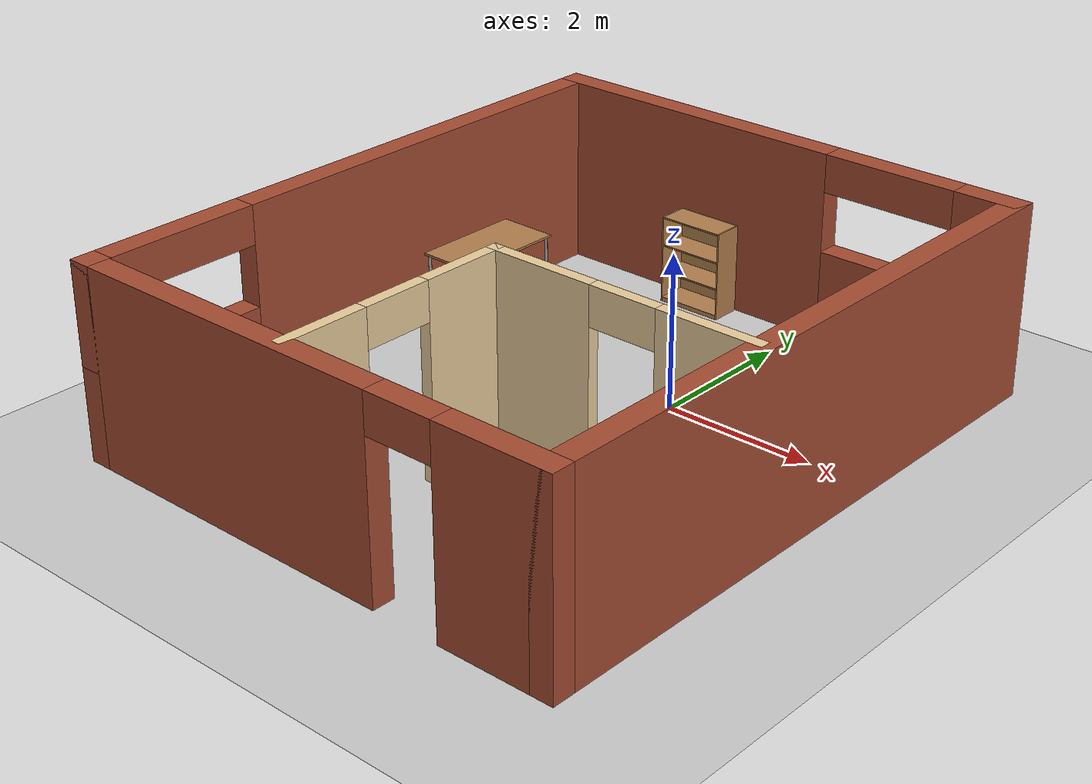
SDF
<sdf version="1.6">
 <world name="default">
  <plugin name="welcome_message" filename="libwelcome_message.so"/>
  <light name="sun" type="directional">
   <pose>0 0 10 0 -0 0</pose>
   <diffuse>0.8 0.8 0.8 1</diffuse>
   <specular>0.2 0.2 0.2 1</specular>
   <attenuation>
    <range>1000</range>
    <constant>0.9</constant>
    <linear>0.01</linear>
    <quadratic>0.001</quadratic>
   </attenuation>
   <direction>-0.5 0.1 -0.9</direction>
  </light>
  <model name="ground_plane">
   <static>1</static>
   <link name="link">
    <collision name="collision">
     <geometry><plane><normal>0 0 1</normal><size>100 100</size></plane></geometry>
     <surface><friction><ode><mu>100</mu><mu2>50</mu2></ode></friction></surface>
    </collision>
    <visual name="visual">
     <cast_shadows>0</cast_shadows>
     <geometry><plane><normal>0 0 1</normal><size>100 100</size></plane></geometry>
     <material>
      <script><uri>file://media/materials/scripts/gazebo.material</uri><name>Gazebo/Grey</name></script>
     </material>
    </visual>
   </link>
  </model>
  <gravity>0 0 -9.8</gravity>
  <magnetic_field>6e-06 2.3e-05 -4.2e-05</magnetic_field>
  <atmosphere type="adiabatic"/>
  <physics name="default_physics" default="0" type="ode">
   <max_step_size>0.001</max_step_size>
   <real_time_factor>1</real_time_factor>
   <real_time_update_rate>1000</real_time_update_rate>
  </physics>
  <scene><ambient>0.4 0.4 0.4 1</ambient><background>0.7 0.7 0.7 1</background><shadows>1</shadows></scene>
  <spherical_coordinates>
   <surface_model>EARTH_WGS84</surface_model>
   <latitude_deg>0</latitude_deg>
   <longitude_deg>0</longitude_deg>
   <elevation>0</elevation>
   <heading_deg>0</heading_deg>
  </spherical_coordinates>
  <model name="table_0">
   <static>1</static>
   <link name="link">
    <collision name="surface">
     <pose>0 0 1 0 -0 0</pose>
     <geometry><box><size>1.5 0.8 0.03</size></box></geometry>
     <surface><friction><ode><mu>0.6</mu><mu2>0.6</mu2></ode></friction></surface>
    </collision>
    <visual name="visual1">
     <pose>0 0 1 0 -0 0</pose>
     <geometry><box><size>1.5 0.8 0.03</size></box></geometry>
     <material>
      <script><uri>file://media/materials/scripts/gazebo.material</uri><name>Gazebo/Wood</name></script>
     </material>
    </visual>
    <collision name="front_left_leg">
     <pose>0.68 0.38 0.5 0 -0 0</pose>
     <geometry><cylinder><radius>0.02</radius><length>1</length></cylinder></geometry>
    </collision>
    <visual name="front_left_leg">
     <pose>0.68 0.38 0.5 0 -0 0</pose>
     <geometry><cylinder><radius>0.02</radius><length>1</length></cylinder></geometry>
     <material>
      <script><uri>file://media/materials/scripts/gazebo.material</uri><name>Gazebo/Grey</name></script>
     </material>
    </visual>
    <collision name="front_right_leg">
     <pose>0.68 -0.38 0.5 0 -0 0</pose>
     <geometry><cylinder><radius>0.02</radius><length>1</length></cylinder></geometry>
    </collision>
    <visual name="front_right_leg">
     <pose>0.68 -0.38 0.5 0 -0 0</pose>
     <geometry><cylinder><radius>0.02</radius><length>1</length></cylinder></geometry>
     <material>
      <script><uri>file://media/materials/scripts/gazebo.material</uri><name>Gazebo/Grey</name></script>
     </material>
    </visual>
    <collision name="back_right_leg">
     <pose>-0.68 -0.38 0.5 0 -0 0</pose>
     <geometry><cylinder><radius>0.02</radius><length>1</length></cylinder></geometry>
    </collision>
    <visual name="back_right_leg">
     <pose>-0.68 -0.38 0.5 0 -0 0</pose>
     <geometry><cylinder><radius>0.02</radius><length>1</length></cylinder></geometry>
     <material>
      <script><uri>file://media/materials/scripts/gazebo.material</uri><name>Gazebo/Grey</name></script>
     </material>
    </visual>
    <collision name="back_left_leg">
     <pose>-0.68 0.38 0.5 0 -0 0</pose>
     <geometry><cylinder><radius>0.02</radius><length>1</length></cylinder></geometry>
    </collision>
    <visual name="back_left_leg">
     <pose>-0.68 0.38 0.5 0 -0 0</pose>
     <geometry><cylinder><radius>0.02</radius><length>1</length></cylinder></geometry>
     <material>
      <script><uri>file://media/materials/scripts/gazebo.material</uri><name>Gazebo/Grey</name></script>
     </material>
    </visual>
   </link>
   <pose>-3.37762 0.440889 0 0 0 -1.57822</pose>
  </model>
  <model name="cabinet">
   <static>1</static>
   <link name="cabinet_bottom_plate">
    <inertial>
     <pose>0 0 -1 0 -0 0</pose>
     <inertia><ixx>2.05</ixx><ixy>0</ixy><ixz>0</ixz><iyy>2.05</iyy><iyz>0</iyz><izz>2.05</izz></inertia>
     <mass>25</mass>
    </inertial>
    <collision name="cabinet_bottom_plate_geom">
     <pose>0 0 0.01 0 -0 0</pose>
     <geometry><box><size>0.45 0.45 0.02</size></box></geometry>
    </collision>
    <visual name="cabinet_bottom_plate_geom_visual">
     <pose>0 0 0.01 0 -0 0</pose>
     <geometry><box><size>0.45 0.45 0.02</size></box></geometry>
     <material>
      <script><uri>file://media/materials/scripts/gazebo.material</uri><name>Gazebo/Wood</name></script>
     </material>
    </visual>
    <collision name="cabinet_bottom_plate_geom_cabinet_back_plate">
     <pose>0.235 0 0.51 0 -0 0</pose>
     <geometry><box><size>0.02 0.45 1.02</size></box></geometry>
    </collision>
    <visual name="cabinet_bottom_plate_geom_cabinet_back_plate_visual">
     <pose>0.235 0 0.51 0 -0 0</pose>
     <geometry><box><size>0.02 0.45 1.02</size></box></geometry>
     <material>
      <script><uri>file://media/materials/scripts/gazebo.material</uri><name>Gazebo/Wood</name></script>
     </material>
    </visual>
    <collision name="cabinet_bottom_plate_geom_cabinet_left_plate">
     <pose>0 0.235 0.51 0 -0 0</pose>
     <geometry><box><size>0.45 0.02 1.02</size></box></geometry>
    </collision>
    <visual name="cabinet_bottom_plate_geom_cabinet_left_plate_visual">
     <pose>0 0.235 0.51 0 -0 0</pose>
     <geometry><box><size>0.45 0.02 1.02</size></box></geometry>
     <material>
      <script><uri>file://media/materials/scripts/gazebo.material</uri><name>Gazebo/Wood</name></script>
     </material>
    </visual>
    <collision name="cabinet_bottom_plate_geom_cabinet_middle_plate">
     <pose>0 0 0.51 0 -0 0</pose>
     <geometry><box><size>0.45 0.45 0.02</size></box></geometry>
    </collision>
    <visual name="cabinet_bottom_plate_geom_cabinet_middle_plate_visual">
     <pose>0 0 0.51 0 -0 0</pose>
     <geometry><box><size>0.45 0.45 0.02</size></box></geometry>
     <material>
      <script><uri>file://media/materials/scripts/gazebo.material</uri><name>Gazebo/Wood</name></script>
     </material>
    </visual>
    <collision name="cabinet_bottom_plate_geom_cabinet_right_plate">
     <pose>0 -0.235 0.51 0 -0 0</pose>
     <geometry><box><size>0.45 0.02 1.02</size></box></geometry>
    </collision>
    <visual name="cabinet_bottom_plate_geom_cabinet_right_plate_visual">
     <pose>0 -0.235 0.51 0 -0 0</pose>
     <geometry><box><size>0.45 0.02 1.02</size></box></geometry>
     <material>
      <script><uri>file://media/materials/scripts/gazebo.material</uri><name>Gazebo/Wood</name></script>
     </material>
    </visual>
    <collision name="cabinet_bottom_plate_geom_cabinet_top_plate">
     <pose>0 0 1.01 0 -0 0</pose>
     <geometry><box><size>0.45 0.45 0.02</size></box></geometry>
    </collision>
    <visual name="cabinet_bottom_plate_geom_cabinet_top_plate_visual">
     <pose>0 0 1.01 0 -0 0</pose>
     <geometry><box><size>0.45 0.45 0.02</size></box></geometry>
     <material>
      <script><uri>file://media/materials/scripts/gazebo.material</uri><name>Gazebo/Wood</name></script>
     </material>
    </visual>
   </link>
   <pose>2.34182 0.948326 0 0 -0 0</pose>
  </model>
  <model name="bookshelf">
   <static>1</static>
   <link name="link">
    <inertial><mass>1</mass></inertial>
    <collision name="back">
     <pose>0 0.005 0.6 0 -0 0</pose>
     <geometry><box><size>0.9 0.01 1.2</size></box></geometry>
    </collision>
    <visual name="visual1">
     <pose>0 0.005 0.6 0 -0 0</pose>
     <geometry><box><size>0.9 0.01 1.2</size></box></geometry>
     <material>
      <script><uri>file://media/materials/scripts/gazebo.material</uri><name>Gazebo/Wood</name></script>
     </material>
    </visual>
    <collision name="left_side">
     <pose>0.45 -0.195 0.6 0 -0 0</pose>
     <geometry><box><size>0.02 0.4 1.2</size></box></geometry>
    </collision>
    <visual name="visual2">
     <pose>0.45 -0.195 0.6 0 -0 0</pose>
     <geometry><box><size>0.02 0.4 1.2</size></box></geometry>
     <material>
      <script><uri>file://media/materials/scripts/gazebo.material</uri><name>Gazebo/Wood</name></script>
     </material>
    </visual>
    <collision name="right_side">
     <pose>-0.45 -0.195 0.6 0 -0 0</pose>
     <geometry><box><size>0.02 0.4 1.2</size></box></geometry>
    </collision>
    <visual name="visual3">
     <pose>-0.45 -0.195 0.6 0 -0 0</pose>
     <geometry><box><size>0.02 0.4 1.2</size></box></geometry>
     <material>
      <script><uri>file://media/materials/scripts/gazebo.material</uri><name>Gazebo/Wood</name></script>
     </material>
    </visual>
    <collision name="bottom">
     <pose>0 -0.195 0.03 0 -0 0</pose>
     <geometry><box><size>0.88 0.4 0.06</size></box></geometry>
    </collision>
    <visual name="visual4">
     <pose>0 -0.195 0.03 0 -0 0</pose>
     <geometry><box><size>0.88 0.4 0.06</size></box></geometry>
     <material>
      <script><uri>file://media/materials/scripts/gazebo.material</uri><name>Gazebo/Wood</name></script>
     </material>
    </visual>
    <collision name="top">
     <pose>0 -0.195 1.19 0 -0 0</pose>
     <geometry><box><size>0.88 0.4 0.02</size></box></geometry>
    </collision>
    <visual name="visual5">
     <pose>0 -0.195 1.19 0 -0 0</pose>
     <geometry><box><size>0.88 0.4 0.02</size></box></geometry>
     <material>
      <script><uri>file://media/materials/scripts/gazebo.material</uri><name>Gazebo/Wood</name></script>
     </material>
    </visual>
    <collision name="low_shelf">
     <pose>0 -0.195 0.43 0 -0 0</pose>
     <geometry><box><size>0.88 0.4 0.02</size></box></geometry>
    </collision>
    <visual name="visual6">
     <pose>0 -0.195 0.43 0 -0 0</pose>
     <geometry><box><size>0.88 0.4 0.02</size></box></geometry>
     <material>
      <script><uri>file://media/materials/scripts/gazebo.material</uri><name>Gazebo/Wood</name></script>
     </material>
    </visual>
    <collision name="high_shelf">
     <pose>0 -0.195 0.8 0 -0 0</pose>
     <geometry><box><size>0.88 0.4 0.02</size></box></geometry>
    </collision>
    <visual name="visual7">
     <pose>0 -0.195 0.8 0 -0 0</pose>
     <geometry><box><size>0.88 0.4 0.02</size></box></geometry>
     <material>
      <script><uri>file://media/materials/scripts/gazebo.material</uri><name>Gazebo/Wood</name></script>
     </material>
    </visual>
   </link>
   <pose>-1.53018 2.67141 0 0 -0 0</pose>
  </model>
  <model name="house">
   <link name="Wall_0">
    <pose>0 4.0085 0 0 -0 0</pose>
    <visual name="Wall_0_Visual_0">
     <pose>-1.33829 0 1.25 0 -0 0</pose>
     <geometry><box><size>4.32341 0.3 2.5</size></box></geometry>
     <material>
      <script><uri>file://media/materials/scripts/gazebo.material</uri><name>Gazebo/Bricks</name></script>
      <ambient>1 0.764706 0.305882 1</ambient>
      <shader type="pixel"/>
      <diffuse>1 1 1 1</diffuse>
      <specular>0.2 0.2 0.2 1</specular>
      <emissive>0 0 0 1</emissive>
     </material>
     <meta><layer>0</layer></meta>
    </visual>
    <visual name="Wall_0_Visual_1">
     <pose>2.16171 0 0.6 0 -0 0</pose>
     <geometry><box><size>2.67659 0.3 1.2</size></box></geometry>
     <material>
      <script><uri>file://media/materials/scripts/gazebo.material</uri><name>Gazebo/Bricks</name></script>
      <ambient>1 0.764706 0.305882 1</ambient>
      <shader type="pixel"/>
      <diffuse>1 1 1 1</diffuse>
      <specular>0.2 0.2 0.2 1</specular>
      <emissive>0 0 0 1</emissive>
     </material>
     <meta><layer>0</layer></meta>
    </visual>
    <visual name="Wall_0_Visual_2">
     <pose>3.06171 0 1.85 0 -0 0</pose>
     <geometry><box><size>0.876586 0.3 1.3</size></box></geometry>
     <material>
      <script><uri>file://media/materials/scripts/gazebo.material</uri><name>Gazebo/Bricks</name></script>
      <ambient>1 0.764706 0.305882 1</ambient>
      <shader type="pixel"/>
      <diffuse>1 1 1 1</diffuse>
      <specular>0.2 0.2 0.2 1</specular>
      <emissive>0 0 0 1</emissive>
     </material>
     <meta><layer>0</layer></meta>
    </visual>
    <visual name="Wall_0_Visual_3">
     <pose>1.72341 0 2.25 0 -0 0</pose>
     <geometry><box><size>1.8 0.3 0.5</size></box></geometry>
     <material>
      <script><uri>file://media/materials/scripts/gazebo.material</uri><name>Gazebo/Bricks</name></script>
      <ambient>1 0.764706 0.305882 1</ambient>
      <shader type="pixel"/>
      <diffuse>1 1 1 1</diffuse>
      <specular>0.2 0.2 0.2 1</specular>
      <emissive>0 0 0 1</emissive>
     </material>
     <meta><layer>0</layer></meta>
    </visual>
    <collision name="Wall_0_Collision_0">
     <pose>-1.33829 0 1.25 0 -0 0</pose>
     <geometry><box><size>4.32341 0.3 2.5</size></box></geometry>
     <surface>
      <friction>
       <ode><mu>1</mu><mu2>1</mu2><fdir1>0 0 0</fdir1><slip1>0</slip1><slip2>0</slip2></ode>
       <torsional>
        <coefficient>1</coefficient>
        <patch_radius>0</patch_radius>
        <surface_radius>0</surface_radius>
        <use_patch_radius>1</use_patch_radius>
        <ode><slip>0</slip></ode>
       </torsional>
      </friction>
      <bounce><restitution_coefficient>0</restitution_coefficient><threshold>1e+06</threshold></bounce>
      <contact>
       <collide_without_contact>0</collide_without_contact>
       <collide_without_contact_bitmask>1</collide_without_contact_bitmask>
       <collide_bitmask>1</collide_bitmask>
       <ode>
        <soft_cfm>0</soft_cfm>
        <soft_erp>0.2</soft_erp>
        <kp>1e+13</kp>
        <kd>1</kd>
        <max_vel>0.01</max_vel>
        <min_depth>0</min_depth>
       </ode>
       <bullet>
        <split_impulse>1</split_impulse>
        <split_impulse_penetration_threshold>-0.01</split_impulse_penetration_threshold>
        <soft_cfm>0</soft_cfm>
        <soft_erp>0.2</soft_erp>
        <kp>1e+13</kp>
        <kd>1</kd>
       </bullet>
      </contact>
     </surface>
    </collision>
    <collision name="Wall_0_Collision_1">
     <pose>2.16171 0 0.6 0 -0 0</pose>
     <geometry><box><size>2.67659 0.3 1.2</size></box></geometry>
     <surface>
      <friction>
       <ode><mu>1</mu><mu2>1</mu2><fdir1>0 0 0</fdir1><slip1>0</slip1><slip2>0</slip2></ode>
       <torsional>
        <coefficient>1</coefficient>
        <patch_radius>0</patch_radius>
        <surface_radius>0</surface_radius>
        <use_patch_radius>1</use_patch_radius>
        <ode><slip>0</slip></ode>
       </torsional>
      </friction>
      <bounce><restitution_coefficient>0</restitution_coefficient><threshold>1e+06</threshold></bounce>
      <contact>
       <collide_without_contact>0</collide_without_contact>
       <collide_without_contact_bitmask>1</collide_without_contact_bitmask>
       <collide_bitmask>1</collide_bitmask>
       <ode>
        <soft_cfm>0</soft_cfm>
        <soft_erp>0.2</soft_erp>
        <kp>1e+13</kp>
        <kd>1</kd>
        <max_vel>0.01</max_vel>
        <min_depth>0</min_depth>
       </ode>
       <bullet>
        <split_impulse>1</split_impulse>
        <split_impulse_penetration_threshold>-0.01</split_impulse_penetration_threshold>
        <soft_cfm>0</soft_cfm>
        <soft_erp>0.2</soft_erp>
        <kp>1e+13</kp>
        <kd>1</kd>
       </bullet>
      </contact>
     </surface>
    </collision>
    <collision name="Wall_0_Collision_2">
     <pose>3.06171 0 1.85 0 -0 0</pose>
     <geometry><box><size>0.876586 0.3 1.3</size></box></geometry>
     <surface>
      <friction>
       <ode><mu>1</mu><mu2>1</mu2><fdir1>0 0 0</fdir1><slip1>0</slip1><slip2>0</slip2></ode>
       <torsional>
        <coefficient>1</coefficient>
        <patch_radius>0</patch_radius>
        <surface_radius>0</surface_radius>
        <use_patch_radius>1</use_patch_radius>
        <ode><slip>0</slip></ode>
       </torsional>
      </friction>
      <bounce><restitution_coefficient>0</restitution_coefficient><threshold>1e+06</threshold></bounce>
      <contact>
       <collide_without_contact>0</collide_without_contact>
       <collide_without_contact_bitmask>1</collide_without_contact_bitmask>
       <collide_bitmask>1</collide_bitmask>
       <ode>
        <soft_cfm>0</soft_cfm>
        <soft_erp>0.2</soft_erp>
        <kp>1e+13</kp>
        <kd>1</kd>
        <max_vel>0.01</max_vel>
        <min_depth>0</min_depth>
       </ode>
       <bullet>
        <split_impulse>1</split_impulse>
        <split_impulse_penetration_threshold>-0.01</split_impulse_penetration_threshold>
        <soft_cfm>0</soft_cfm>
        <soft_erp>0.2</soft_erp>
        <kp>1e+13</kp>
        <kd>1</kd>
       </bullet>
      </contact>
     </surface>
    </collision>
    <collision name="Wall_0_Collision_3">
     <pose>1.72341 0 2.25 0 -0 0</pose>
     <geometry><box><size>1.8 0.3 0.5</size></box></geometry>
     <surface>
      <friction>
       <ode><mu>1</mu><mu2>1</mu2><fdir1>0 0 0</fdir1><slip1>0</slip1><slip2>0</slip2></ode>
       <torsional>
        <coefficient>1</coefficient>
        <patch_radius>0</patch_radius>
        <surface_radius>0</surface_radius>
        <use_patch_radius>1</use_patch_radius>
        <ode><slip>0</slip></ode>
       </torsional>
      </friction>
      <bounce><restitution_coefficient>0</restitution_coefficient><threshold>1e+06</threshold></bounce>
      <contact>
       <collide_without_contact>0</collide_without_contact>
       <collide_without_contact_bitmask>1</collide_without_contact_bitmask>
       <collide_bitmask>1</collide_bitmask>
       <ode>
        <soft_cfm>0</soft_cfm>
        <soft_erp>0.2</soft_erp>
        <kp>1e+13</kp>
        <kd>1</kd>
        <max_vel>0.01</max_vel>
        <min_depth>0</min_depth>
       </ode>
       <bullet>
        <split_impulse>1</split_impulse>
        <split_impulse_penetration_threshold>-0.01</split_impulse_penetration_threshold>
        <soft_cfm>0</soft_cfm>
        <soft_erp>0.2</soft_erp>
        <kp>1e+13</kp>
        <kd>1</kd>
       </bullet>
      </contact>
     </surface>
    </collision>
   </link>
   <link name="Wall_11">
    <pose>3.35 0 0 0 0 -1.5708</pose>
    <visual name="Wall_11_Visual">
     <pose>0 0 1.25 0 -0 0</pose>
     <geometry><box><size>8.317 0.3 2.5</size></box></geometry>
     <material>
      <script><uri>file://media/materials/scripts/gazebo.material</uri><name>Gazebo/Bricks</name></script>
      <ambient>1 0.764706 0.305882 1</ambient>
      <shader type="pixel"/>
      <diffuse>1 1 1 1</diffuse>
      <specular>0.2 0.2 0.2 1</specular>
      <emissive>0 0 0 1</emissive>
     </material>
     <meta><layer>0</layer></meta>
    </visual>
    <collision name="Wall_11_Collision">
     <pose>0 0 1.25 0 -0 0</pose>
     <geometry><box><size>8.317 0.3 2.5</size></box></geometry>
     <surface>
      <friction>
       <ode><mu>1</mu><mu2>1</mu2><fdir1>0 0 0</fdir1><slip1>0</slip1><slip2>0</slip2></ode>
       <torsional>
        <coefficient>1</coefficient>
        <patch_radius>0</patch_radius>
        <surface_radius>0</surface_radius>
        <use_patch_radius>1</use_patch_radius>
        <ode><slip>0</slip></ode>
       </torsional>
      </friction>
      <bounce><restitution_coefficient>0</restitution_coefficient><threshold>1e+06</threshold></bounce>
      <contact>
       <collide_without_contact>0</collide_without_contact>
       <collide_without_contact_bitmask>1</collide_without_contact_bitmask>
       <collide_bitmask>1</collide_bitmask>
       <ode>
        <soft_cfm>0</soft_cfm>
        <soft_erp>0.2</soft_erp>
        <kp>1e+13</kp>
        <kd>1</kd>
        <max_vel>0.01</max_vel>
        <min_depth>0</min_depth>
       </ode>
       <bullet>
        <split_impulse>1</split_impulse>
        <split_impulse_penetration_threshold>-0.01</split_impulse_penetration_threshold>
        <soft_cfm>0</soft_cfm>
        <soft_erp>0.2</soft_erp>
        <kp>1e+13</kp>
        <kd>1</kd>
       </bullet>
      </contact>
     </surface>
    </collision>
   </link>
   <link name="Wall_13">
    <pose>-0.288 -2.4125 0 0 -0 1.5708</pose>
    <visual name="Wall_13_Visual_0">
     <pose>-1.04294 0 1.25 0 -0 0</pose>
     <geometry><box><size>1.16413 0.15 2.5</size></box></geometry>
     <material>
      <script><uri>file://media/materials/scripts/gazebo.material</uri><name>Gazebo/Grey</name></script>
      <ambient>0.921569 0.807843 0.615686 1</ambient>
      <shader type="pixel"/>
      <diffuse>0.7 0.7 0.7 1</diffuse>
      <specular>0.01 0.01 0.01 1</specular>
      <emissive>0 0 0 1</emissive>
     </material>
     <meta><layer>0</layer></meta>
    </visual>
    <visual name="Wall_13_Visual_1">
     <pose>1.03206 0 1.25 0 -0 0</pose>
     <geometry><box><size>1.18587 0.15 2.5</size></box></geometry>
     <material>
      <script><uri>file://media/materials/scripts/gazebo.material</uri><name>Gazebo/Grey</name></script>
      <ambient>0.921569 0.807843 0.615686 1</ambient>
      <shader type="pixel"/>
      <diffuse>0.7 0.7 0.7 1</diffuse>
      <specular>0.01 0.01 0.01 1</specular>
      <emissive>0 0 0 1</emissive>
     </material>
     <meta><layer>0</layer></meta>
    </visual>
    <visual name="Wall_13_Visual_2">
     <pose>-0.010874 0 2.25 0 -0 0</pose>
     <geometry><box><size>0.9 0.15 0.5</size></box></geometry>
     <material>
      <script><uri>file://media/materials/scripts/gazebo.material</uri><name>Gazebo/Grey</name></script>
      <ambient>0.921569 0.807843 0.615686 1</ambient>
      <shader type="pixel"/>
      <diffuse>0.7 0.7 0.7 1</diffuse>
      <specular>0.01 0.01 0.01 1</specular>
      <emissive>0 0 0 1</emissive>
     </material>
     <meta><layer>0</layer></meta>
    </visual>
    <collision name="Wall_13_Collision_0">
     <pose>-1.04294 0 1.25 0 -0 0</pose>
     <geometry><box><size>1.16413 0.15 2.5</size></box></geometry>
     <surface>
      <friction>
       <ode><mu>1</mu><mu2>1</mu2><fdir1>0 0 0</fdir1><slip1>0</slip1><slip2>0</slip2></ode>
       <torsional>
        <coefficient>1</coefficient>
        <patch_radius>0</patch_radius>
        <surface_radius>0</surface_radius>
        <use_patch_radius>1</use_patch_radius>
        <ode><slip>0</slip></ode>
       </torsional>
      </friction>
      <bounce><restitution_coefficient>0</restitution_coefficient><threshold>1e+06</threshold></bounce>
      <contact>
       <collide_without_contact>0</collide_without_contact>
       <collide_without_contact_bitmask>1</collide_without_contact_bitmask>
       <collide_bitmask>1</collide_bitmask>
       <ode>
        <soft_cfm>0</soft_cfm>
        <soft_erp>0.2</soft_erp>
        <kp>1e+13</kp>
        <kd>1</kd>
        <max_vel>0.01</max_vel>
        <min_depth>0</min_depth>
       </ode>
       <bullet>
        <split_impulse>1</split_impulse>
        <split_impulse_penetration_threshold>-0.01</split_impulse_penetration_threshold>
        <soft_cfm>0</soft_cfm>
        <soft_erp>0.2</soft_erp>
        <kp>1e+13</kp>
        <kd>1</kd>
       </bullet>
      </contact>
     </surface>
    </collision>
    <collision name="Wall_13_Collision_1">
     <pose>1.03206 0 1.25 0 -0 0</pose>
     <geometry><box><size>1.18587 0.15 2.5</size></box></geometry>
     <surface>
      <friction>
       <ode><mu>1</mu><mu2>1</mu2><fdir1>0 0 0</fdir1><slip1>0</slip1><slip2>0</slip2></ode>
       <torsional>
        <coefficient>1</coefficient>
        <patch_radius>0</patch_radius>
        <surface_radius>0</surface_radius>
        <use_patch_radius>1</use_patch_radius>
        <ode><slip>0</slip></ode>
       </torsional>
      </friction>
      <bounce><restitution_coefficient>0</restitution_coefficient><threshold>1e+06</threshold></bounce>
      <contact>
       <collide_without_contact>0</collide_without_contact>
       <collide_without_contact_bitmask>1</collide_without_contact_bitmask>
       <collide_bitmask>1</collide_bitmask>
       <ode>
        <soft_cfm>0</soft_cfm>
        <soft_erp>0.2</soft_erp>
        <kp>1e+13</kp>
        <kd>1</kd>
        <max_vel>0.01</max_vel>
        <min_depth>0</min_depth>
       </ode>
       <bullet>
        <split_impulse>1</split_impulse>
        <split_impulse_penetration_threshold>-0.01</split_impulse_penetration_threshold>
        <soft_cfm>0</soft_cfm>
        <soft_erp>0.2</soft_erp>
        <kp>1e+13</kp>
        <kd>1</kd>
       </bullet>
      </contact>
     </surface>
    </collision>
    <collision name="Wall_13_Collision_2">
     <pose>-0.010874 0 2.25 0 -0 0</pose>
     <geometry><box><size>0.9 0.15 0.5</size></box></geometry>
     <surface>
      <friction>
       <ode><mu>1</mu><mu2>1</mu2><fdir1>0 0 0</fdir1><slip1>0</slip1><slip2>0</slip2></ode>
       <torsional>
        <coefficient>1</coefficient>
        <patch_radius>0</patch_radius>
        <surface_radius>0</surface_radius>
        <use_patch_radius>1</use_patch_radius>
        <ode><slip>0</slip></ode>
       </torsional>
      </friction>
      <bounce><restitution_coefficient>0</restitution_coefficient><threshold>1e+06</threshold></bounce>
      <contact>
       <collide_without_contact>0</collide_without_contact>
       <collide_without_contact_bitmask>1</collide_without_contact_bitmask>
       <collide_bitmask>1</collide_bitmask>
       <ode>
        <soft_cfm>0</soft_cfm>
        <soft_erp>0.2</soft_erp>
        <kp>1e+13</kp>
        <kd>1</kd>
        <max_vel>0.01</max_vel>
        <min_depth>0</min_depth>
       </ode>
       <bullet>
        <split_impulse>1</split_impulse>
        <split_impulse_penetration_threshold>-0.01</split_impulse_penetration_threshold>
        <soft_cfm>0</soft_cfm>
        <soft_erp>0.2</soft_erp>
        <kp>1e+13</kp>
        <kd>1</kd>
       </bullet>
      </contact>
     </surface>
    </collision>
   </link>
   <link name="Wall_14">
    <pose>1.512 -0.8625 0 0 -0 0</pose>
    <visual name="Wall_14_Visual_0">
     <pose>-1.12678 0 1.25 0 -0 0</pose>
     <geometry><box><size>1.49644 0.15 2.5</size></box></geometry>
     <material>
      <script><uri>file://media/materials/scripts/gazebo.material</uri><name>Gazebo/Grey</name></script>
      <ambient>0.921569 0.807843 0.615686 1</ambient>
      <shader type="pixel"/>
      <diffuse>0.7 0.7 0.7 1</diffuse>
      <specular>0.01 0.01 0.01 1</specular>
      <emissive>0 0 0 1</emissive>
     </material>
     <meta><layer>0</layer></meta>
    </visual>
    <visual name="Wall_14_Visual_1">
     <pose>1.19822 0 1.25 0 -0 0</pose>
     <geometry><box><size>1.35356 0.15 2.5</size></box></geometry>
     <material>
      <script><uri>file://media/materials/scripts/gazebo.material</uri><name>Gazebo/Grey</name></script>
      <ambient>0.921569 0.807843 0.615686 1</ambient>
      <shader type="pixel"/>
      <diffuse>0.7 0.7 0.7 1</diffuse>
      <specular>0.01 0.01 0.01 1</specular>
      <emissive>0 0 0 1</emissive>
     </material>
     <meta><layer>0</layer></meta>
    </visual>
    <visual name="Wall_14_Visual_2">
     <pose>0.071437 0 2.25 0 -0 0</pose>
     <geometry><box><size>0.9 0.15 0.5</size></box></geometry>
     <material>
      <script><uri>file://media/materials/scripts/gazebo.material</uri><name>Gazebo/Grey</name></script>
      <ambient>0.921569 0.807843 0.615686 1</ambient>
      <shader type="pixel"/>
      <diffuse>0.7 0.7 0.7 1</diffuse>
      <specular>0.01 0.01 0.01 1</specular>
      <emissive>0 0 0 1</emissive>
     </material>
     <meta><layer>0</layer></meta>
    </visual>
    <collision name="Wall_14_Collision_0">
     <pose>-1.12678 0 1.25 0 -0 0</pose>
     <geometry><box><size>1.49644 0.15 2.5</size></box></geometry>
     <surface>
      <friction>
       <ode><mu>1</mu><mu2>1</mu2><fdir1>0 0 0</fdir1><slip1>0</slip1><slip2>0</slip2></ode>
       <torsional>
        <coefficient>1</coefficient>
        <patch_radius>0</patch_radius>
        <surface_radius>0</surface_radius>
        <use_patch_radius>1</use_patch_radius>
        <ode><slip>0</slip></ode>
       </torsional>
      </friction>
      <bounce><restitution_coefficient>0</restitution_coefficient><threshold>1e+06</threshold></bounce>
      <contact>
       <collide_without_contact>0</collide_without_contact>
       <collide_without_contact_bitmask>1</collide_without_contact_bitmask>
       <collide_bitmask>1</collide_bitmask>
       <ode>
        <soft_cfm>0</soft_cfm>
        <soft_erp>0.2</soft_erp>
        <kp>1e+13</kp>
        <kd>1</kd>
        <max_vel>0.01</max_vel>
        <min_depth>0</min_depth>
       </ode>
       <bullet>
        <split_impulse>1</split_impulse>
        <split_impulse_penetration_threshold>-0.01</split_impulse_penetration_threshold>
        <soft_cfm>0</soft_cfm>
        <soft_erp>0.2</soft_erp>
        <kp>1e+13</kp>
        <kd>1</kd>
       </bullet>
      </contact>
     </surface>
    </collision>
    <collision name="Wall_14_Collision_1">
     <pose>1.19822 0 1.25 0 -0 0</pose>
     <geometry><box><size>1.35356 0.15 2.5</size></box></geometry>
     <surface>
      <friction>
       <ode><mu>1</mu><mu2>1</mu2><fdir1>0 0 0</fdir1><slip1>0</slip1><slip2>0</slip2></ode>
       <torsional>
        <coefficient>1</coefficient>
        <patch_radius>0</patch_radius>
        <surface_radius>0</surface_radius>
        <use_patch_radius>1</use_patch_radius>
        <ode><slip>0</slip></ode>
       </torsional>
      </friction>
      <bounce><restitution_coefficient>0</restitution_coefficient><threshold>1e+06</threshold></bounce>
      <contact>
       <collide_without_contact>0</collide_without_contact>
       <collide_without_contact_bitmask>1</collide_without_contact_bitmask>
       <collide_bitmask>1</collide_bitmask>
       <ode>
        <soft_cfm>0</soft_cfm>
        <soft_erp>0.2</soft_erp>
        <kp>1e+13</kp>
        <kd>1</kd>
        <max_vel>0.01</max_vel>
        <min_depth>0</min_depth>
       </ode>
       <bullet>
        <split_impulse>1</split_impulse>
        <split_impulse_penetration_threshold>-0.01</split_impulse_penetration_threshold>
        <soft_cfm>0</soft_cfm>
        <soft_erp>0.2</soft_erp>
        <kp>1e+13</kp>
        <kd>1</kd>
       </bullet>
      </contact>
     </surface>
    </collision>
    <collision name="Wall_14_Collision_2">
     <pose>0.071437 0 2.25 0 -0 0</pose>
     <geometry><box><size>0.9 0.15 0.5</size></box></geometry>
     <surface>
      <friction>
       <ode><mu>1</mu><mu2>1</mu2><fdir1>0 0 0</fdir1><slip1>0</slip1><slip2>0</slip2></ode>
       <torsional>
        <coefficient>1</coefficient>
        <patch_radius>0</patch_radius>
        <surface_radius>0</surface_radius>
        <use_patch_radius>1</use_patch_radius>
        <ode><slip>0</slip></ode>
       </torsional>
      </friction>
      <bounce><restitution_coefficient>0</restitution_coefficient><threshold>1e+06</threshold></bounce>
      <contact>
       <collide_without_contact>0</collide_without_contact>
       <collide_without_contact_bitmask>1</collide_without_contact_bitmask>
       <collide_bitmask>1</collide_bitmask>
       <ode>
        <soft_cfm>0</soft_cfm>
        <soft_erp>0.2</soft_erp>
        <kp>1e+13</kp>
        <kd>1</kd>
        <max_vel>0.01</max_vel>
        <min_depth>0</min_depth>
       </ode>
       <bullet>
        <split_impulse>1</split_impulse>
        <split_impulse_penetration_threshold>-0.01</split_impulse_penetration_threshold>
        <soft_cfm>0</soft_cfm>
        <soft_erp>0.2</soft_erp>
        <kp>1e+13</kp>
        <kd>1</kd>
       </bullet>
      </contact>
     </surface>
    </collision>
   </link>
   <link name="Wall_4">
    <pose>-3.35 0 0 0 0 -1.5708</pose>
    <visual name="Wall_4_Visual_0">
     <pose>-1.15907 0 1.25 0 -0 0</pose>
     <geometry><box><size>5.99886 0.3 2.5</size></box></geometry>
     <material>
      <script><uri>file://media/materials/scripts/gazebo.material</uri><name>Gazebo/Bricks</name></script>
      <ambient>1 0.764706 0.305882 1</ambient>
      <shader type="pixel"/>
      <diffuse>1 1 1 1</diffuse>
      <specular>0.2 0.2 0.2 1</specular>
      <emissive>0 0 0 1</emissive>
     </material>
     <meta><layer>0</layer></meta>
    </visual>
    <visual name="Wall_4_Visual_1">
     <pose>2.99943 0 0.6 0 -0 0</pose>
     <geometry><box><size>2.31814 0.3 1.2</size></box></geometry>
     <material>
      <script><uri>file://media/materials/scripts/gazebo.material</uri><name>Gazebo/Bricks</name></script>
      <ambient>1 0.764706 0.305882 1</ambient>
      <shader type="pixel"/>
      <diffuse>1 1 1 1</diffuse>
      <specular>0.2 0.2 0.2 1</specular>
      <emissive>0 0 0 1</emissive>
     </material>
     <meta><layer>0</layer></meta>
    </visual>
    <visual name="Wall_4_Visual_2">
     <pose>3.99943 0 1.85 0 -0 0</pose>
     <geometry><box><size>0.318137 0.3 1.3</size></box></geometry>
     <material>
      <script><uri>file://media/materials/scripts/gazebo.material</uri><name>Gazebo/Bricks</name></script>
      <ambient>1 0.764706 0.305882 1</ambient>
      <shader type="pixel"/>
      <diffuse>1 1 1 1</diffuse>
      <specular>0.2 0.2 0.2 1</specular>
      <emissive>0 0 0 1</emissive>
     </material>
     <meta><layer>0</layer></meta>
    </visual>
    <visual name="Wall_4_Visual_3">
     <pose>2.84036 0 2.25 0 -0 0</pose>
     <geometry><box><size>2 0.3 0.5</size></box></geometry>
     <material>
      <script><uri>file://media/materials/scripts/gazebo.material</uri><name>Gazebo/Bricks</name></script>
      <ambient>1 0.764706 0.305882 1</ambient>
      <shader type="pixel"/>
      <diffuse>1 1 1 1</diffuse>
      <specular>0.2 0.2 0.2 1</specular>
      <emissive>0 0 0 1</emissive>
     </material>
     <meta><layer>0</layer></meta>
    </visual>
    <collision name="Wall_4_Collision_0">
     <pose>-1.15907 0 1.25 0 -0 0</pose>
     <geometry><box><size>5.99886 0.3 2.5</size></box></geometry>
     <surface>
      <friction>
       <ode><mu>1</mu><mu2>1</mu2><fdir1>0 0 0</fdir1><slip1>0</slip1><slip2>0</slip2></ode>
       <torsional>
        <coefficient>1</coefficient>
        <patch_radius>0</patch_radius>
        <surface_radius>0</surface_radius>
        <use_patch_radius>1</use_patch_radius>
        <ode><slip>0</slip></ode>
       </torsional>
      </friction>
      <bounce><restitution_coefficient>0</restitution_coefficient><threshold>1e+06</threshold></bounce>
      <contact>
       <collide_without_contact>0</collide_without_contact>
       <collide_without_contact_bitmask>1</collide_without_contact_bitmask>
       <collide_bitmask>1</collide_bitmask>
       <ode>
        <soft_cfm>0</soft_cfm>
        <soft_erp>0.2</soft_erp>
        <kp>1e+13</kp>
        <kd>1</kd>
        <max_vel>0.01</max_vel>
        <min_depth>0</min_depth>
       </ode>
       <bullet>
        <split_impulse>1</split_impulse>
        <split_impulse_penetration_threshold>-0.01</split_impulse_penetration_threshold>
        <soft_cfm>0</soft_cfm>
        <soft_erp>0.2</soft_erp>
        <kp>1e+13</kp>
        <kd>1</kd>
       </bullet>
      </contact>
     </surface>
    </collision>
    <collision name="Wall_4_Collision_1">
     <pose>2.99943 0 0.6 0 -0 0</pose>
     <geometry><box><size>2.31814 0.3 1.2</size></box></geometry>
     <surface>
      <friction>
       <ode><mu>1</mu><mu2>1</mu2><fdir1>0 0 0</fdir1><slip1>0</slip1><slip2>0</slip2></ode>
       <torsional>
        <coefficient>1</coefficient>
        <patch_radius>0</patch_radius>
        <surface_radius>0</surface_radius>
        <use_patch_radius>1</use_patch_radius>
        <ode><slip>0</slip></ode>
       </torsional>
      </friction>
      <bounce><restitution_coefficient>0</restitution_coefficient><threshold>1e+06</threshold></bounce>
      <contact>
       <collide_without_contact>0</collide_without_contact>
       <collide_without_contact_bitmask>1</collide_without_contact_bitmask>
       <collide_bitmask>1</collide_bitmask>
       <ode>
        <soft_cfm>0</soft_cfm>
        <soft_erp>0.2</soft_erp>
        <kp>1e+13</kp>
        <kd>1</kd>
        <max_vel>0.01</max_vel>
        <min_depth>0</min_depth>
       </ode>
       <bullet>
        <split_impulse>1</split_impulse>
        <split_impulse_penetration_threshold>-0.01</split_impulse_penetration_threshold>
        <soft_cfm>0</soft_cfm>
        <soft_erp>0.2</soft_erp>
        <kp>1e+13</kp>
        <kd>1</kd>
       </bullet>
      </contact>
     </surface>
    </collision>
    <collision name="Wall_4_Collision_2">
     <pose>3.99943 0 1.85 0 -0 0</pose>
     <geometry><box><size>0.318137 0.3 1.3</size></box></geometry>
     <surface>
      <friction>
       <ode><mu>1</mu><mu2>1</mu2><fdir1>0 0 0</fdir1><slip1>0</slip1><slip2>0</slip2></ode>
       <torsional>
        <coefficient>1</coefficient>
        <patch_radius>0</patch_radius>
        <surface_radius>0</surface_radius>
        <use_patch_radius>1</use_patch_radius>
        <ode><slip>0</slip></ode>
       </torsional>
      </friction>
      <bounce><restitution_coefficient>0</restitution_coefficient><threshold>1e+06</threshold></bounce>
      <contact>
       <collide_without_contact>0</collide_without_contact>
       <collide_without_contact_bitmask>1</collide_without_contact_bitmask>
       <collide_bitmask>1</collide_bitmask>
       <ode>
        <soft_cfm>0</soft_cfm>
        <soft_erp>0.2</soft_erp>
        <kp>1e+13</kp>
        <kd>1</kd>
        <max_vel>0.01</max_vel>
        <min_depth>0</min_depth>
       </ode>
       <bullet>
        <split_impulse>1</split_impulse>
        <split_impulse_penetration_threshold>-0.01</split_impulse_penetration_threshold>
        <soft_cfm>0</soft_cfm>
        <soft_erp>0.2</soft_erp>
        <kp>1e+13</kp>
        <kd>1</kd>
       </bullet>
      </contact>
     </surface>
    </collision>
    <collision name="Wall_4_Collision_3">
     <pose>2.84036 0 2.25 0 -0 0</pose>
     <geometry><box><size>2 0.3 0.5</size></box></geometry>
     <surface>
      <friction>
       <ode><mu>1</mu><mu2>1</mu2><fdir1>0 0 0</fdir1><slip1>0</slip1><slip2>0</slip2></ode>
       <torsional>
        <coefficient>1</coefficient>
        <patch_radius>0</patch_radius>
        <surface_radius>0</surface_radius>
        <use_patch_radius>1</use_patch_radius>
        <ode><slip>0</slip></ode>
       </torsional>
      </friction>
      <bounce><restitution_coefficient>0</restitution_coefficient><threshold>1e+06</threshold></bounce>
      <contact>
       <collide_without_contact>0</collide_without_contact>
       <collide_without_contact_bitmask>1</collide_without_contact_bitmask>
       <collide_bitmask>1</collide_bitmask>
       <ode>
        <soft_cfm>0</soft_cfm>
        <soft_erp>0.2</soft_erp>
        <kp>1e+13</kp>
        <kd>1</kd>
        <max_vel>0.01</max_vel>
        <min_depth>0</min_depth>
       </ode>
       <bullet>
        <split_impulse>1</split_impulse>
        <split_impulse_penetration_threshold>-0.01</split_impulse_penetration_threshold>
        <soft_cfm>0</soft_cfm>
        <soft_erp>0.2</soft_erp>
        <kp>1e+13</kp>
        <kd>1</kd>
       </bullet>
      </contact>
     </surface>
    </collision>
   </link>
   <link name="Wall_5">
    <pose>0 -4.0085 0 0 -0 0</pose>
    <visual name="Wall_5_Visual_0">
     <pose>-1.20949 0 1.25 0 -0 0</pose>
     <geometry><box><size>4.58102 0.3 2.5</size></box></geometry>
     <material>
      <script><uri>file://media/materials/scripts/gazebo.material</uri><name>Gazebo/Bricks</name></script>
      <ambient>1 0.764706 0.305882 1</ambient>
      <shader type="pixel"/>
      <diffuse>1 1 1 1</diffuse>
      <specular>0.2 0.2 0.2 1</specular>
      <emissive>0 0 0 1</emissive>
     </material>
     <meta><layer>0</layer></meta>
    </visual>
    <visual name="Wall_5_Visual_1">
     <pose>2.74051 0 1.25 0 -0 0</pose>
     <geometry><box><size>1.51898 0.3 2.5</size></box></geometry>
     <material>
      <script><uri>file://media/materials/scripts/gazebo.material</uri><name>Gazebo/Bricks</name></script>
      <ambient>1 0.764706 0.305882 1</ambient>
      <shader type="pixel"/>
      <diffuse>1 1 1 1</diffuse>
      <specular>0.2 0.2 0.2 1</specular>
      <emissive>0 0 0 1</emissive>
     </material>
     <meta><layer>0</layer></meta>
    </visual>
    <visual name="Wall_5_Visual_2">
     <pose>1.53102 0 2.25 0 -0 0</pose>
     <geometry><box><size>0.9 0.3 0.5</size></box></geometry>
     <material>
      <script><uri>file://media/materials/scripts/gazebo.material</uri><name>Gazebo/Bricks</name></script>
      <ambient>1 0.764706 0.305882 1</ambient>
      <shader type="pixel"/>
      <diffuse>1 1 1 1</diffuse>
      <specular>0.2 0.2 0.2 1</specular>
      <emissive>0 0 0 1</emissive>
     </material>
     <meta><layer>0</layer></meta>
    </visual>
    <collision name="Wall_5_Collision_1">
     <pose>2.74051 0 1.25 0 -0 0</pose>
     <geometry><box><size>1.51898 0.3 2.5</size></box></geometry>
     <surface>
      <friction>
       <ode><mu>1</mu><mu2>1</mu2><fdir1>0 0 0</fdir1><slip1>0</slip1><slip2>0</slip2></ode>
       <torsional>
        <coefficient>1</coefficient>
        <patch_radius>0</patch_radius>
        <surface_radius>0</surface_radius>
        <use_patch_radius>1</use_patch_radius>
        <ode><slip>0</slip></ode>
       </torsional>
      </friction>
      <bounce><restitution_coefficient>0</restitution_coefficient><threshold>1e+06</threshold></bounce>
      <contact>
       <collide_without_contact>0</collide_without_contact>
       <collide_without_contact_bitmask>1</collide_without_contact_bitmask>
       <collide_bitmask>1</collide_bitmask>
       <ode>
        <soft_cfm>0</soft_cfm>
        <soft_erp>0.2</soft_erp>
        <kp>1e+13</kp>
        <kd>1</kd>
        <max_vel>0.01</max_vel>
        <min_depth>0</min_depth>
       </ode>
       <bullet>
        <split_impulse>1</split_impulse>
        <split_impulse_penetration_threshold>-0.01</split_impulse_penetration_threshold>
        <soft_cfm>0</soft_cfm>
        <soft_erp>0.2</soft_erp>
        <kp>1e+13</kp>
        <kd>1</kd>
       </bullet>
      </contact>
     </surface>
    </collision>
    <collision name="Wall_5_Collision_0">
     <pose>-1.20949 0 1.25 0 -0 0</pose>
     <geometry><box><size>4.58102 0.3 2.5</size></box></geometry>
     <surface>
      <friction>
       <ode><mu>1</mu><mu2>1</mu2><fdir1>0 0 0</fdir1><slip1>0</slip1><slip2>0</slip2></ode>
       <torsional>
        <coefficient>1</coefficient>
        <patch_radius>0</patch_radius>
        <surface_radius>0</surface_radius>
        <use_patch_radius>1</use_patch_radius>
        <ode><slip>0</slip></ode>
       </torsional>
      </friction>
      <bounce><restitution_coefficient>0</restitution_coefficient><threshold>1e+06</threshold></bounce>
      <contact>
       <collide_without_contact>0</collide_without_contact>
       <collide_without_contact_bitmask>1</collide_without_contact_bitmask>
       <collide_bitmask>1</collide_bitmask>
       <ode>
        <soft_cfm>0</soft_cfm>
        <soft_erp>0.2</soft_erp>
        <kp>1e+13</kp>
        <kd>1</kd>
        <max_vel>0.01</max_vel>
        <min_depth>0</min_depth>
       </ode>
       <bullet>
        <split_impulse>1</split_impulse>
        <split_impulse_penetration_threshold>-0.01</split_impulse_penetration_threshold>
        <soft_cfm>0</soft_cfm>
        <soft_erp>0.2</soft_erp>
        <kp>1e+13</kp>
        <kd>1</kd>
       </bullet>
      </contact>
     </surface>
    </collision>
    <collision name="Wall_5_Collision_2">
     <pose>1.53102 0 2.25 0 -0 0</pose>
     <geometry><box><size>0.9 0.3 0.5</size></box></geometry>
     <surface>
      <friction>
       <ode><mu>1</mu><mu2>1</mu2><fdir1>0 0 0</fdir1><slip1>0</slip1><slip2>0</slip2></ode>
       <torsional>
        <coefficient>1</coefficient>
        <patch_radius>0</patch_radius>
        <surface_radius>0</surface_radius>
        <use_patch_radius>1</use_patch_radius>
        <ode><slip>0</slip></ode>
       </torsional>
      </friction>
      <bounce><restitution_coefficient>0</restitution_coefficient><threshold>1e+06</threshold></bounce>
      <contact>
       <collide_without_contact>0</collide_without_contact>
       <collide_without_contact_bitmask>1</collide_without_contact_bitmask>
       <collide_bitmask>1</collide_bitmask>
       <ode>
        <soft_cfm>0</soft_cfm>
        <soft_erp>0.2</soft_erp>
        <kp>1e+13</kp>
        <kd>1</kd>
        <max_vel>0.01</max_vel>
        <min_depth>0</min_depth>
       </ode>
       <bullet>
        <split_impulse>1</split_impulse>
        <split_impulse_penetration_threshold>-0.01</split_impulse_penetration_threshold>
        <soft_cfm>0</soft_cfm>
        <soft_erp>0.2</soft_erp>
        <kp>1e+13</kp>
        <kd>1</kd>
       </bullet>
      </contact>
     </surface>
    </collision>
   </link>
   <static>1</static>
   <pose>-0.61402 -1.16378 0 0 -0 0</pose>
  </model>
 </world>
</sdf>
